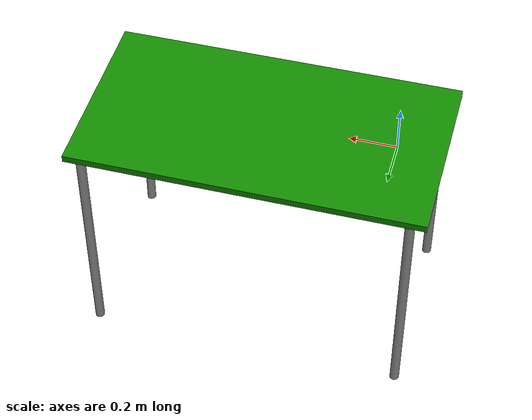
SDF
<?xml version="1.0" ?>
<sdf version="1.6">
  <world name="default">
    <!-- A global light source -->
    <include>
      <uri>model://sun</uri>
    </include>
    <!-- Wooden Table -->
    <include>
      <uri>model://tableAV</uri>
      <name>Wooden_Table</name>
      <pose>0.55 0 -1.015 0 0 0.0</pose>
      <static>true</static>
    </include>
  </world>
</sdf>

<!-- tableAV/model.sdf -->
<sdf version="1.5">
  <model name="tableAV">
    <static>true</static>
    <link name="link">
      <collision name="surface">
        <pose>0 0 1.0 0 0 0</pose>
        <geometry>
          <box>
            <size>1.5 0.8 0.03</size>
          </box>
        </geometry>
        <surface>
          <contact>
            <ode>
              <max_vel>0.1</max_vel>
              <min_depth>0.001</min_depth>
            </ode>
          </contact>
          <friction>
            <ode>
              <mu>1.0</mu>
              <mu2>1.0</mu2>
            </ode>
          </friction>
        </surface>
      </collision>
      <visual name="visual1">
        <pose>0 0 1.0 0 0 0</pose>
        <geometry>
          <box>
            <size>1.5 0.8 0.03</size>
          </box>
        </geometry>
        <material>
          <ambient>0.07 0.53 0 1</ambient>
          <diffuse>0.07 0.53 0 1</diffuse>
          <specular>0.0 0.0 0.0 1</specular>
          <emissive>0 0 0 0</emissive>
        </material>
      </visual>
      <collision name="front_left_leg">
        <pose>0.68 0.38 0.5 0 0 0</pose>
        <geometry>
          <cylinder>
            <radius>0.02</radius>
            <length>1.0</length>
          </cylinder>
        </geometry>
      </collision>
      <visual name="front_left_leg">
        <pose>0.68 0.38 0.5 0 0 0</pose>
        <geometry>
          <cylinder>
            <radius>0.02</radius>
            <length>1.0</length>
          </cylinder>
        </geometry>
        <material>
          <script>
            <uri>file://media/materials/scripts/gazebo.material</uri>
            <name>Gazebo/Grey</name>
          </script>
        </material>
      </visual>
      <collision name="front_right_leg">
        <pose>0.68 -0.38 0.5 0 0 0</pose>
        <geometry>
          <cylinder>
            <radius>0.02</radius>
            <length>1.0</length>
          </cylinder>
        </geometry>
      </collision>
      <visual name="front_right_leg">
        <pose>0.68 -0.38 0.5 0 0 0</pose>
        <geometry>
          <cylinder>
            <radius>0.02</radius>
            <length>1.0</length>
          </cylinder>
        </geometry>
        <material>
          <script>
            <uri>file://media/materials/scripts/gazebo.material</uri>
            <name>Gazebo/Grey</name>
          </script>
        </material>
      </visual>
      <collision name="back_right_leg">
        <pose>-0.68 -0.38 0.5 0 0 0</pose>
        <geometry>
          <cylinder>
            <radius>0.02</radius>
            <length>1.0</length>
          </cylinder>
        </geometry>
      </collision>
      <visual name="back_right_leg">
        <pose>-0.68 -0.38 0.5 0 0 0</pose>
        <geometry>
          <cylinder>
            <radius>0.02</radius>
            <length>1.0</length>
          </cylinder>
        </geometry>
        <material>
          <script>
            <uri>file://media/materials/scripts/gazebo.material</uri>
            <name>Gazebo/Grey</name>
          </script>
        </material>
      </visual>
      <collision name="back_left_leg">
        <pose>-0.68 0.38 0.5 0 0 0</pose>
        <geometry>
          <cylinder>
            <radius>0.02</radius>
            <length>1.0</length>
          </cylinder>
        </geometry>
      </collision>
      <visual name="back_left_leg">
        <pose>-0.68 0.38 0.5 0 0 0</pose>
        <geometry>
          <cylinder>
            <radius>0.02</radius>
            <length>1.0</length>
          </cylinder>
        </geometry>
        <material>
          <script>
            <uri>file://media/materials/scripts/gazebo.material</uri>
            <name>Gazebo/Grey</name>
          </script>
        </material>
      </visual>
    </link>
  </model>
</sdf>
